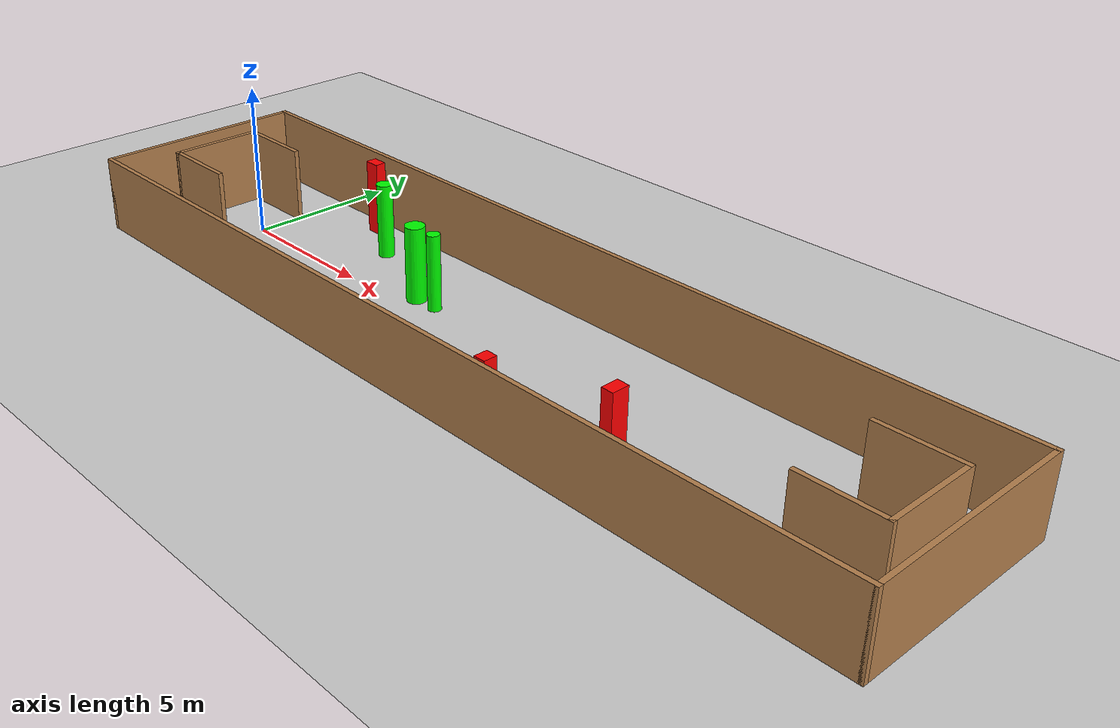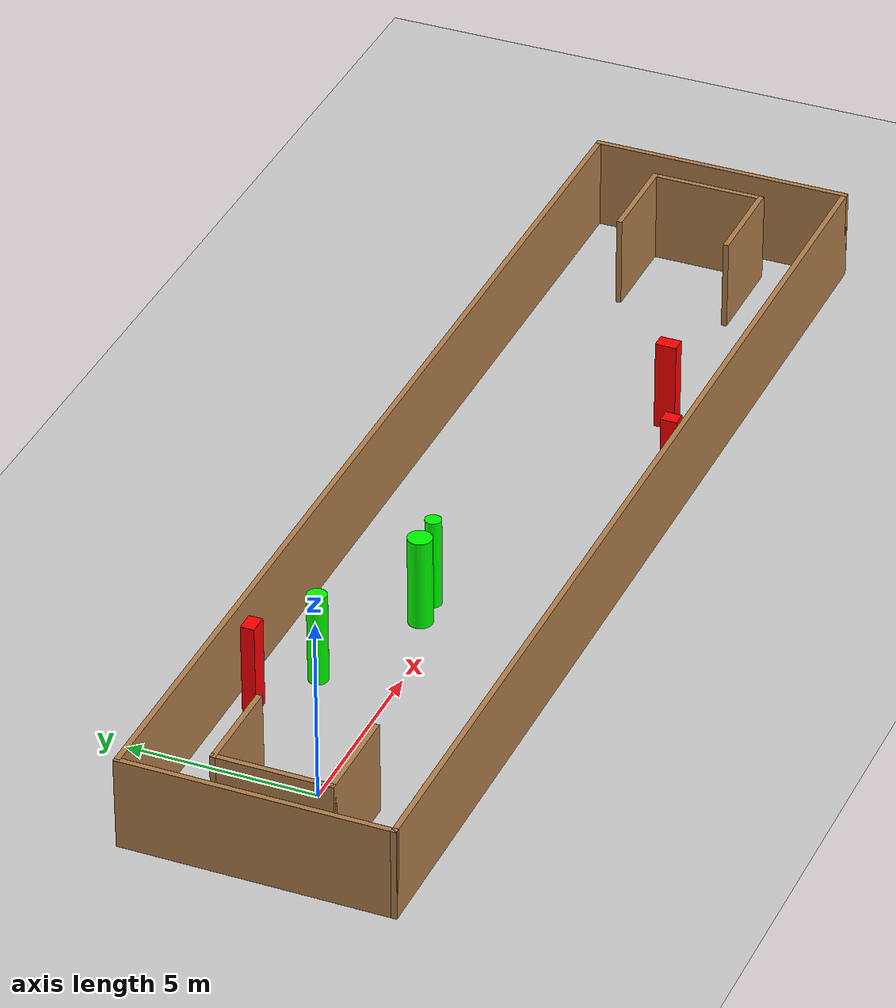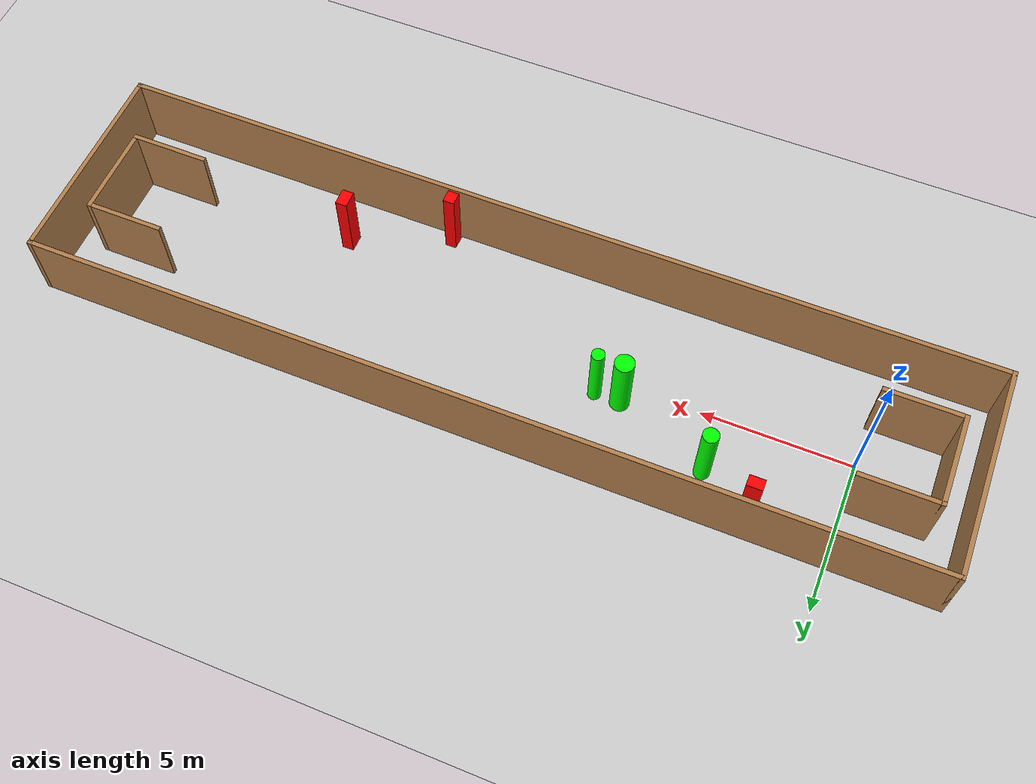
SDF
<sdf version="1.7">
 <world name="default">
  <light name="sun" type="directional">
   <pose>0 0 10 0 -0 0</pose>
   <diffuse>0.8 0.8 0.8 1</diffuse>
   <specular>0.2 0.2 0.2 1</specular>
   <attenuation>
    <range>1000</range>
    <constant>0.9</constant>
    <linear>0.01</linear>
    <quadratic>0.001</quadratic>
   </attenuation>
   <direction>-0.5 0.1 -0.9</direction>
   <spot><inner_angle>0</inner_angle><outer_angle>0</outer_angle><falloff>0</falloff></spot>
  </light>
  <model name="ground_plane">
   <static>1</static>
   <link name="link">
    <collision name="collision">
     <geometry><plane><normal>0 0 1</normal><size>100 100</size></plane></geometry>
     <surface>
      <contact><collide_bitmask>65535</collide_bitmask></contact>
      <friction><ode><mu>100</mu><mu2>50</mu2></ode></friction>
     </surface>
    </collision>
    <visual name="visual">
     <cast_shadows>0</cast_shadows>
     <geometry><plane><normal>0 0 1</normal><size>100 100</size></plane></geometry>
     <material>
      <script><uri>file://media/materials/scripts/gazebo.material</uri><name>Gazebo/Grey</name></script>
     </material>
    </visual>
   </link>
  </model>
  <gravity>0 0 -9.8</gravity>
  <magnetic_field>6e-06 2.3e-05 -4.2e-05</magnetic_field>
  <atmosphere type="adiabatic"/>
  <physics type="ode">
   <max_step_size>0.001</max_step_size>
   <real_time_factor>1</real_time_factor>
   <real_time_update_rate>1000</real_time_update_rate>
  </physics>
  <scene><ambient>0.4 0.4 0.4 1</ambient><background>0.7 0.7 0.7 1</background><shadows>1</shadows></scene>
  <spherical_coordinates>
   <surface_model>EARTH_WGS84</surface_model>
   <latitude_deg>0</latitude_deg>
   <longitude_deg>0</longitude_deg>
   <elevation>0</elevation>
   <heading_deg>0</heading_deg>
  </spherical_coordinates>
  <model name="my_base_walls">
   <link name="Wall_0">
    <collision name="Wall_0_Collision">
     <geometry><box><size>7.15 0.15 2.5</size></box></geometry>
     <pose>0 0 1.25 0 -0 0</pose>
    </collision>
    <visual name="Wall_0_Visual">
     <pose>0 0 1.25 0 -0 0</pose>
     <geometry><box><size>7.15 0.15 2.5</size></box></geometry>
     <material>
      <script><uri>file://media/materials/scripts/gazebo.material</uri><name>Gazebo/Wood</name></script>
      <ambient>1 1 1 1</ambient>
     </material>
     <meta><layer>0</layer></meta>
    </visual>
    <pose>-15 0 0 0 -0 1.5708</pose>
   </link>
   <link name="Wall_10">
    <collision name="Wall_10_Collision">
     <geometry><box><size>2.65 0.15 2.5</size></box></geometry>
     <pose>0 0 1.25 0 -0 0</pose>
    </collision>
    <visual name="Wall_10_Visual">
     <pose>0 0 1.25 0 -0 0</pose>
     <geometry><box><size>2.65 0.15 2.5</size></box></geometry>
     <material>
      <script><uri>file://media/materials/scripts/gazebo.material</uri><name>Gazebo/Wood</name></script>
      <ambient>1 1 1 1</ambient>
     </material>
     <meta><layer>0</layer></meta>
    </visual>
    <pose>-12.75 -1.5 0 0 -0 0</pose>
   </link>
   <link name="Wall_12">
    <collision name="Wall_12_Collision">
     <geometry><box><size>2.65 0.15 2.5</size></box></geometry>
     <pose>0 0 1.25 0 -0 0</pose>
    </collision>
    <visual name="Wall_12_Visual">
     <pose>0 0 1.25 0 -0 0</pose>
     <geometry><box><size>2.65 0.15 2.5</size></box></geometry>
     <material>
      <script><uri>file://media/materials/scripts/gazebo.material</uri><name>Gazebo/Wood</name></script>
      <ambient>1 1 1 1</ambient>
     </material>
     <meta><layer>0</layer></meta>
    </visual>
    <pose>-12.75 1.5 0 0 -0 0</pose>
   </link>
   <link name="Wall_14">
    <collision name="Wall_14_Collision">
     <geometry><box><size>3.15 0.15 2.5</size></box></geometry>
     <pose>0 0 1.25 0 -0 0</pose>
    </collision>
    <visual name="Wall_14_Visual">
     <pose>0 0 1.25 0 -0 0</pose>
     <geometry><box><size>3.15 0.15 2.5</size></box></geometry>
     <material>
      <script><uri>file://media/materials/scripts/gazebo.material</uri><name>Gazebo/Wood</name></script>
      <ambient>1 1 1 1</ambient>
     </material>
     <meta><layer>0</layer></meta>
    </visual>
    <pose>14 0 0 0 -0 -1.5708</pose>
   </link>
   <link name="Wall_15">
    <collision name="Wall_15_Collision">
     <geometry><box><size>2.65 0.15 2.5</size></box></geometry>
     <pose>0 0 1.25 0 -0 0</pose>
    </collision>
    <visual name="Wall_15_Visual">
     <pose>0 0 1.25 0 -0 0</pose>
     <geometry><box><size>2.65 0.15 2.5</size></box></geometry>
     <material>
      <script><uri>file://media/materials/scripts/gazebo.material</uri><name>Gazebo/Wood</name></script>
      <ambient>1 1 1 1</ambient>
     </material>
     <meta><layer>0</layer></meta>
    </visual>
    <pose>12.75 -1.5 0 0 -0 3.14159</pose>
   </link>
   <link name="Wall_17">
    <collision name="Wall_17_Collision">
     <geometry><box><size>2.65 0.15 2.5</size></box></geometry>
     <pose>0 0 1.25 0 -0 0</pose>
    </collision>
    <visual name="Wall_17_Visual">
     <pose>0 0 1.25 0 -0 0</pose>
     <geometry><box><size>2.65 0.15 2.5</size></box></geometry>
     <material>
      <script><uri>file://media/materials/scripts/gazebo.material</uri><name>Gazebo/Wood</name></script>
      <ambient>1 1 1 1</ambient>
     </material>
     <meta><layer>0</layer></meta>
    </visual>
    <pose>12.75 1.5 0 0 -0 3.14159</pose>
   </link>
   <link name="Wall_2">
    <collision name="Wall_2_Collision">
     <geometry><box><size>30.15 0.15 2.5</size></box></geometry>
     <pose>0 0 1.25 0 -0 0</pose>
    </collision>
    <visual name="Wall_2_Visual">
     <pose>0 0 1.25 0 -0 0</pose>
     <geometry><box><size>30.15 0.15 2.5</size></box></geometry>
     <material>
      <script><uri>file://media/materials/scripts/gazebo.material</uri><name>Gazebo/Wood</name></script>
      <ambient>1 1 1 1</ambient>
     </material>
     <meta><layer>0</layer></meta>
    </visual>
    <pose>-0 -3.5 0 0 -0 0</pose>
   </link>
   <link name="Wall_4">
    <collision name="Wall_4_Collision">
     <geometry><box><size>30.15 0.15 2.5</size></box></geometry>
     <pose>0 0 1.25 0 -0 0</pose>
    </collision>
    <visual name="Wall_4_Visual">
     <pose>0 0 1.25 0 -0 0</pose>
     <geometry><box><size>30.15 0.15 2.5</size></box></geometry>
     <material>
      <script><uri>file://media/materials/scripts/gazebo.material</uri><name>Gazebo/Wood</name></script>
      <ambient>1 1 1 1</ambient>
     </material>
     <meta><layer>0</layer></meta>
    </visual>
    <pose>-0 3.5 0 0 -0 0</pose>
   </link>
   <link name="Wall_6">
    <collision name="Wall_6_Collision">
     <geometry><box><size>7.15 0.15 2.5</size></box></geometry>
     <pose>0 0 1.25 0 -0 0</pose>
    </collision>
    <visual name="Wall_6_Visual">
     <pose>0 0 1.25 0 -0 0</pose>
     <geometry><box><size>7.15 0.15 2.5</size></box></geometry>
     <material>
      <script><uri>file://media/materials/scripts/gazebo.material</uri><name>Gazebo/Wood</name></script>
      <ambient>1 1 1 1</ambient>
     </material>
     <meta><layer>0</layer></meta>
    </visual>
    <pose>15 0 0 0 -0 -1.5708</pose>
   </link>
   <link name="Wall_9">
    <collision name="Wall_9_Collision">
     <geometry><box><size>3.15 0.15 2.5</size></box></geometry>
     <pose>0 0 1.25 0 -0 0</pose>
    </collision>
    <visual name="Wall_9_Visual">
     <pose>0 0 1.25 0 -0 0</pose>
     <geometry><box><size>3.15 0.15 2.5</size></box></geometry>
     <material>
      <script><uri>file://media/materials/scripts/gazebo.material</uri><name>Gazebo/Wood</name></script>
      <ambient>1 1 1 1</ambient>
     </material>
     <meta><layer>0</layer></meta>
    </visual>
    <pose>-14 0 0 0 -0 -1.5708</pose>
   </link>
   <static>1</static>
   <pose>11.5 0 0 0 -0 0</pose>
  </model>
  <model name="cylinder1">
   <static>1</static>
   <link name="link">
    <inertial>
     <mass>1</mass>
     <inertia><ixx>0.5</ixx><ixy>0</ixy><ixz>0</ixz><iyy>0.5</iyy><iyz>0</iyz><izz>1</izz></inertia>
    </inertial>
    <collision name="collision">
     <geometry><cylinder><radius>0.26208472098140506</radius><length>2.5</length></cylinder></geometry>
    </collision>
    <visual name="visual">
     <geometry><cylinder><radius>0.26208472098140506</radius><length>2.5</length></cylinder></geometry>
     <material>
      <ambient>0 1 0 1</ambient>
      <diffuse>0 1 0 1</diffuse>
      <specular>0.1 0.1 0.1 1</specular>
      <emissive>0 0 0 0</emissive>
     </material>
    </visual>
   </link>
   <pose>4.32451664073519 1.9222469888078777 1.25 0 0 0</pose>
  </model>
  <model name="cylinder2">
   <static>1</static>
   <link name="link">
    <inertial>
     <mass>1</mass>
     <inertia><ixx>0.5</ixx><ixy>0</ixy><ixz>0</ixz><iyy>0.5</iyy><iyz>0</iyz><izz>1</izz></inertia>
    </inertial>
    <collision name="collision">
     <geometry><cylinder><radius>0.21423905771081264</radius><length>2.5</length></cylinder></geometry>
    </collision>
    <visual name="visual">
     <geometry><cylinder><radius>0.21423905771081264</radius><length>2.5</length></cylinder></geometry>
     <material>
      <ambient>0 1 0 1</ambient>
      <diffuse>0 1 0 1</diffuse>
      <specular>0.1 0.1 0.1 1</specular>
      <emissive>0 0 0 0</emissive>
     </material>
    </visual>
   </link>
   <pose>8.33345072342129 0.5933262470902374 1.25 0 0 0</pose>
  </model>
  <model name="cylinder3">
   <static>1</static>
   <link name="link">
    <inertial>
     <mass>1</mass>
     <inertia><ixx>0.5</ixx><ixy>0</ixy><ixz>0</ixz><iyy>0.5</iyy><iyz>0</iyz><izz>1</izz></inertia>
    </inertial>
    <collision name="collision">
     <geometry><cylinder><radius>0.3216629497350629</radius><length>2.5</length></cylinder></geometry>
    </collision>
    <visual name="visual">
     <geometry><cylinder><radius>0.3216629497350629</radius><length>2.5</length></cylinder></geometry>
     <material>
      <ambient>0 1 0 1</ambient>
      <diffuse>0 1 0 1</diffuse>
      <specular>0.1 0.1 0.1 1</specular>
      <emissive>0 0 0 0</emissive>
     </material>
    </visual>
   </link>
   <pose>7.488838781739295 0.5838135443217354 1.25 0 0 0</pose>
  </model>
  <model name="box1">
   <static>1</static>
   <link name="link">
    <inertial>
     <mass>1</mass>
     <inertia><ixx>0.083</ixx><ixy>0</ixy><ixz>0</ixz><iyy>0.083</iyy><iyz>0</iyz><izz>0.083</izz></inertia>
    </inertial>
    <collision name="collision">
     <geometry><box><size>0.5143147557179004 0.3642634065281726 2.5</size></box></geometry>
    </collision>
    <visual name="visual">
     <geometry><box><size>0.5143147557179004 0.3642634065281726 2.5</size></box></geometry>
     <material>
      <ambient>1 0 0 1</ambient>
      <diffuse>1 0 0 1</diffuse>
      <specular>0.1 0.1 0.1 1</specular>
      <emissive>0 0 0 0</emissive>
     </material>
    </visual>
    <sensor name="my_contact" type="contact">
     <contact><collision>box_collision</collision><topic>__default_topic__</topic></contact>
    </sensor>
   </link>
   <pose>2.6534671971750576 2.88495869486794 1.25 0 0 0</pose>
  </model>
  <model name="box2">
   <static>1</static>
   <link name="link">
    <inertial>
     <mass>1</mass>
     <inertia><ixx>0.083</ixx><ixy>0</ixy><ixz>0</ixz><iyy>0.083</iyy><iyz>0</iyz><izz>0.083</izz></inertia>
    </inertial>
    <collision name="collision">
     <geometry><box><size>0.3776566552411007 0.4332537796993691 2.5</size></box></geometry>
    </collision>
    <visual name="visual">
     <geometry><box><size>0.3776566552411007 0.4332537796993691 2.5</size></box></geometry>
     <material>
      <ambient>1 0 0 1</ambient>
      <diffuse>1 0 0 1</diffuse>
      <specular>0.1 0.1 0.1 1</specular>
      <emissive>0 0 0 0</emissive>
     </material>
    </visual>
    <sensor name="my_contact" type="contact">
     <contact><collision>box_collision</collision><topic>__default_topic__</topic></contact>
    </sensor>
   </link>
   <pose>14.79130696951315 -3.136346467703954 1.25 0 0 0</pose>
  </model>
  <model name="box3">
   <static>1</static>
   <link name="link">
    <inertial>
     <mass>1</mass>
     <inertia><ixx>0.083</ixx><ixy>0</ixy><ixz>0</ixz><iyy>0.083</iyy><iyz>0</iyz><izz>0.083</izz></inertia>
    </inertial>
    <collision name="collision">
     <geometry><box><size>0.38904220326000527 0.5649675073264067 2.5</size></box></geometry>
    </collision>
    <visual name="visual">
     <geometry><box><size>0.38904220326000527 0.5649675073264067 2.5</size></box></geometry>
     <material>
      <ambient>1 0 0 1</ambient>
      <diffuse>1 0 0 1</diffuse>
      <specular>0.1 0.1 0.1 1</specular>
      <emissive>0 0 0 0</emissive>
     </material>
    </visual>
    <sensor name="my_contact" type="contact">
     <contact><collision>box_collision</collision><topic>__default_topic__</topic></contact>
    </sensor>
   </link>
   <pose>17.977762991376416 -1.8164899187591321 1.25 0 0 0</pose>
  </model>
 </world>
</sdf>
